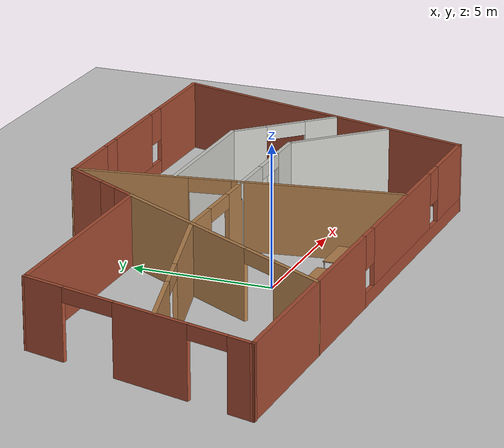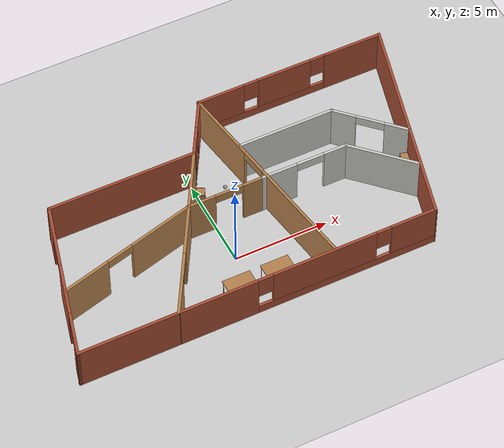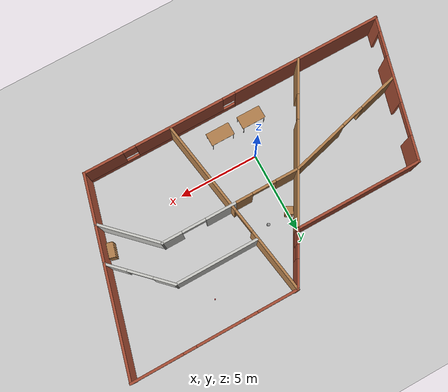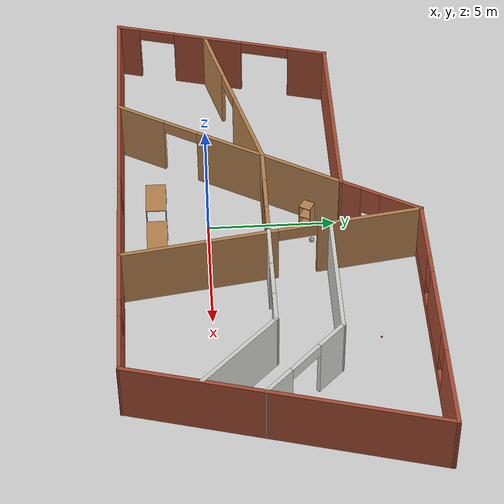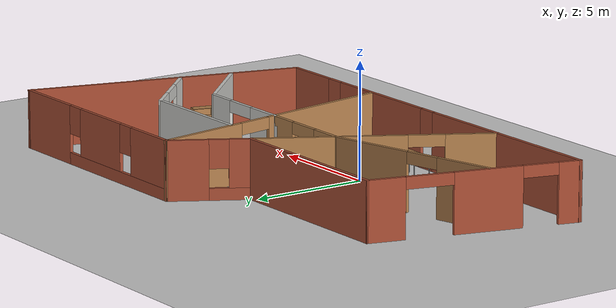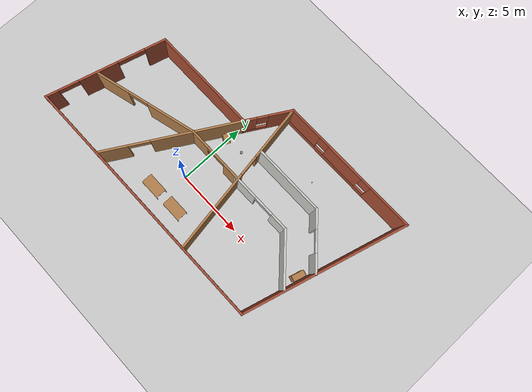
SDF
<sdf version="1.6">
 <world name="default">
  <light name="sun" type="directional">
   <pose>0 0 10 0 -0 0</pose>
   <diffuse>0.8 0.8 0.8 1</diffuse>
   <specular>0.2 0.2 0.2 1</specular>
   <attenuation>
    <range>1000</range>
    <constant>0.9</constant>
    <linear>0.01</linear>
    <quadratic>0.001</quadratic>
   </attenuation>
   <direction>-0.5 0.1 -0.9</direction>
  </light>
  <model name="ground_plane">
   <static>1</static>
   <link name="link">
    <collision name="collision">
     <geometry><plane><normal>0 0 1</normal><size>100 100</size></plane></geometry>
     <surface>
      <contact><collide_bitmask>65535</collide_bitmask></contact>
      <friction><ode><mu>100</mu><mu2>50</mu2></ode></friction>
     </surface>
    </collision>
    <visual name="visual">
     <cast_shadows>0</cast_shadows>
     <geometry><plane><normal>0 0 1</normal><size>100 100</size></plane></geometry>
     <material>
      <script><uri>file://media/materials/scripts/gazebo.material</uri><name>Gazebo/Grey</name></script>
     </material>
    </visual>
   </link>
  </model>
  <gravity>0 0 -9.8</gravity>
  <magnetic_field>6e-06 2.3e-05 -4.2e-05</magnetic_field>
  <atmosphere type="adiabatic"/>
  <physics name="default_physics" default="0" type="ode">
   <max_step_size>0.001</max_step_size>
   <real_time_factor>1</real_time_factor>
   <real_time_update_rate>1000</real_time_update_rate>
  </physics>
  <scene><ambient>0.4 0.4 0.4 1</ambient><background>0.7 0.7 0.7 1</background><shadows>1</shadows></scene>
  <spherical_coordinates>
   <surface_model>EARTH_WGS84</surface_model>
   <latitude_deg>0</latitude_deg>
   <longitude_deg>0</longitude_deg>
   <elevation>0</elevation>
   <heading_deg>0</heading_deg>
  </spherical_coordinates>
  <model name="AmanBuilding">
   <pose>1.20078 2.3534 0 0 -0 0</pose>
   <link name="Wall_0">
    <pose>-1.5335 -5.7284 0 0 -0 0</pose>
    <visual name="Wall_0_Visual_0">
     <pose>-4.88381 0 1.25 0 -0 0</pose>
     <geometry><box><size>9.48238 0.15 2.5</size></box></geometry>
     <material>
      <script><uri>file://media/materials/scripts/gazebo.material</uri><name>Gazebo/Bricks</name></script>
      <ambient>0.996078 0.47451 0.0196078 1</ambient>
     </material>
     <meta><layer>0</layer></meta>
    </visual>
    <collision name="Wall_0_Collision_0">
     <geometry><box><size>9.48238 0.15 2.5</size></box></geometry>
     <pose>-4.88381 0 1.25 0 -0 0</pose>
    </collision>
    <visual name="Wall_0_Visual_1">
     <pose>4.74119 0 0.25 0 -0 0</pose>
     <geometry><box><size>9.76762 0.15 0.5</size></box></geometry>
     <material>
      <script><uri>file://media/materials/scripts/gazebo.material</uri><name>Gazebo/Bricks</name></script>
      <ambient>0.996078 0.47451 0.0196078 1</ambient>
     </material>
     <meta><layer>0</layer></meta>
    </visual>
    <collision name="Wall_0_Collision_1">
     <geometry><box><size>9.76762 0.15 0.5</size></box></geometry>
     <pose>4.74119 0 0.25 0 -0 0</pose>
    </collision>
    <visual name="Wall_0_Visual_2">
     <pose>3.47253 0 1.5 0 -0 0</pose>
     <geometry><box><size>5.63031 0.15 2</size></box></geometry>
     <material>
      <script><uri>file://media/materials/scripts/gazebo.material</uri><name>Gazebo/Bricks</name></script>
      <ambient>0.996078 0.47451 0.0196078 1</ambient>
     </material>
     <meta><layer>0</layer></meta>
    </visual>
    <collision name="Wall_0_Collision_2">
     <geometry><box><size>5.63031 0.15 2</size></box></geometry>
     <pose>3.47253 0 1.5 0 -0 0</pose>
    </collision>
    <visual name="Wall_0_Visual_3">
     <pose>8.35634 0 1.5 0 -0 0</pose>
     <geometry><box><size>2.53731 0.15 2</size></box></geometry>
     <material>
      <script><uri>file://media/materials/scripts/gazebo.material</uri><name>Gazebo/Bricks</name></script>
      <ambient>0.996078 0.47451 0.0196078 1</ambient>
     </material>
     <meta><layer>0</layer></meta>
    </visual>
    <collision name="Wall_0_Collision_3">
     <geometry><box><size>2.53731 0.15 2</size></box></geometry>
     <pose>8.35634 0 1.5 0 -0 0</pose>
    </collision>
    <visual name="Wall_0_Visual_4">
     <pose>0.257378 0 1.9 0 -0 0</pose>
     <geometry><box><size>0.8 0.15 1.2</size></box></geometry>
     <material>
      <script><uri>file://media/materials/scripts/gazebo.material</uri><name>Gazebo/Bricks</name></script>
      <ambient>0.996078 0.47451 0.0196078 1</ambient>
     </material>
     <meta><layer>0</layer></meta>
    </visual>
    <collision name="Wall_0_Collision_4">
     <geometry><box><size>0.8 0.15 1.2</size></box></geometry>
     <pose>0.257378 0 1.9 0 -0 0</pose>
    </collision>
    <visual name="Wall_0_Visual_5">
     <pose>6.68769 0 1.9 0 -0 0</pose>
     <geometry><box><size>0.8 0.15 1.2</size></box></geometry>
     <material>
      <script><uri>file://media/materials/scripts/gazebo.material</uri><name>Gazebo/Bricks</name></script>
      <ambient>0.996078 0.47451 0.0196078 1</ambient>
     </material>
     <meta><layer>0</layer></meta>
    </visual>
    <collision name="Wall_0_Collision_5">
     <geometry><box><size>0.8 0.15 1.2</size></box></geometry>
     <pose>6.68769 0 1.9 0 -0 0</pose>
    </collision>
   </link>
   <link name="Wall_13">
    <pose>1.62541 0.017839 0 0 -0 1.72601</pose>
    <visual name="Wall_13_Visual_0">
     <pose>-2.8124 0 1.25 0 -0 0</pose>
     <geometry><box><size>6.06387 0.15 2.5</size></box></geometry>
     <material>
      <script><uri>file://media/materials/scripts/gazebo.material</uri><name>Gazebo/Wood</name></script>
      <ambient>0.435294 0.796078 0.67451 1</ambient>
     </material>
     <meta><layer>0</layer></meta>
    </visual>
    <collision name="Wall_13_Collision_0">
     <geometry><box><size>6.06387 0.15 2.5</size></box></geometry>
     <pose>-2.8124 0 1.25 0 -0 0</pose>
    </collision>
    <visual name="Wall_13_Visual_1">
     <pose>3.78193 0 1.25 0 -0 0</pose>
     <geometry><box><size>4.12481 0.15 2.5</size></box></geometry>
     <material>
      <script><uri>file://media/materials/scripts/gazebo.material</uri><name>Gazebo/Wood</name></script>
      <ambient>0.435294 0.796078 0.67451 1</ambient>
     </material>
     <meta><layer>0</layer></meta>
    </visual>
    <collision name="Wall_13_Collision_1">
     <geometry><box><size>4.12481 0.15 2.5</size></box></geometry>
     <pose>3.78193 0 1.25 0 -0 0</pose>
    </collision>
    <visual name="Wall_13_Visual_2">
     <pose>0.96953 0 2.25 0 -0 0</pose>
     <geometry><box><size>1.5 0.15 0.5</size></box></geometry>
     <material>
      <script><uri>file://media/materials/scripts/gazebo.material</uri><name>Gazebo/Wood</name></script>
      <ambient>0.435294 0.796078 0.67451 1</ambient>
     </material>
     <meta><layer>0</layer></meta>
    </visual>
    <collision name="Wall_13_Collision_2">
     <geometry><box><size>1.5 0.15 0.5</size></box></geometry>
     <pose>0.96953 0 2.25 0 -0 0</pose>
    </collision>
   </link>
   <link name="Wall_15">
    <collision name="Wall_15_Collision">
     <geometry><box><size>5.25 0.15 2.5</size></box></geometry>
     <pose>0 0 1.25 0 -0 0</pose>
    </collision>
    <visual name="Wall_15_Visual">
     <pose>0 0 1.25 0 -0 0</pose>
     <geometry><box><size>5.25 0.15 2.5</size></box></geometry>
     <material>
      <script><uri>file://media/materials/scripts/gazebo.material</uri><name>Gazebo/CeilingTiled</name></script>
      <ambient>1 0.764706 0.305882 1</ambient>
     </material>
     <meta><layer>0</layer></meta>
    </visual>
    <pose>3.91077 2.22853 0 0 -0 0</pose>
   </link>
   <link name="Wall_18">
    <pose>7.91034 0.778958 0 0 0 -0.785398</pose>
    <visual name="Wall_18_Visual_0">
     <pose>-1.43607 0 1.25 0 -0 0</pose>
     <geometry><box><size>1.37787 0.15 2.5</size></box></geometry>
     <material>
      <script><uri>file://media/materials/scripts/gazebo.material</uri><name>Gazebo/CeilingTiled</name></script>
      <ambient>1 0.764706 0.305882 1</ambient>
     </material>
     <meta><layer>0</layer></meta>
    </visual>
    <collision name="Wall_18_Collision_0">
     <geometry><box><size>1.37787 0.15 2.5</size></box></geometry>
     <pose>-1.43607 0 1.25 0 -0 0</pose>
    </collision>
    <visual name="Wall_18_Visual_1">
     <pose>1.43893 0 1.25 0 -0 0</pose>
     <geometry><box><size>1.37213 0.15 2.5</size></box></geometry>
     <material>
      <script><uri>file://media/materials/scripts/gazebo.material</uri><name>Gazebo/CeilingTiled</name></script>
      <ambient>1 0.764706 0.305882 1</ambient>
     </material>
     <meta><layer>0</layer></meta>
    </visual>
    <collision name="Wall_18_Collision_1">
     <geometry><box><size>1.37213 0.15 2.5</size></box></geometry>
     <pose>1.43893 0 1.25 0 -0 0</pose>
    </collision>
    <visual name="Wall_18_Visual_2">
     <pose>0.002866 0 2.25 0 -0 0</pose>
     <geometry><box><size>1.5 0.15 0.5</size></box></geometry>
     <material>
      <script><uri>file://media/materials/scripts/gazebo.material</uri><name>Gazebo/CeilingTiled</name></script>
      <ambient>1 0.764706 0.305882 1</ambient>
     </material>
     <meta><layer>0</layer></meta>
    </visual>
    <collision name="Wall_18_Collision_2">
     <geometry><box><size>1.5 0.15 0.5</size></box></geometry>
     <pose>0.002866 0 2.25 0 -0 0</pose>
    </collision>
   </link>
   <link name="Wall_20">
    <pose>-0.613955 -0.130795 0 0 -0 0</pose>
    <visual name="Wall_20_Visual_0">
     <pose>-1.35223 0 1.25 0 -0 0</pose>
     <geometry><box><size>1.54554 0.15 2.5</size></box></geometry>
     <material>
      <script><uri>file://media/materials/scripts/gazebo.material</uri><name>Gazebo/Wood</name></script>
      <ambient>0.435294 0.796078 0.67451 1</ambient>
     </material>
     <meta><layer>0</layer></meta>
    </visual>
    <collision name="Wall_20_Collision_0">
     <geometry><box><size>1.54554 0.15 2.5</size></box></geometry>
     <pose>-1.35223 0 1.25 0 -0 0</pose>
    </collision>
    <visual name="Wall_20_Visual_1">
     <pose>1.52277 0 1.25 0 -0 0</pose>
     <geometry><box><size>1.20446 0.15 2.5</size></box></geometry>
     <material>
      <script><uri>file://media/materials/scripts/gazebo.material</uri><name>Gazebo/Wood</name></script>
      <ambient>0.435294 0.796078 0.67451 1</ambient>
     </material>
     <meta><layer>0</layer></meta>
    </visual>
    <collision name="Wall_20_Collision_1">
     <geometry><box><size>1.20446 0.15 2.5</size></box></geometry>
     <pose>1.52277 0 1.25 0 -0 0</pose>
    </collision>
    <visual name="Wall_20_Visual_2">
     <pose>0.170538 0 2.25 0 -0 0</pose>
     <geometry><box><size>1.5 0.15 0.5</size></box></geometry>
     <material>
      <script><uri>file://media/materials/scripts/gazebo.material</uri><name>Gazebo/Wood</name></script>
      <ambient>0.435294 0.796078 0.67451 1</ambient>
     </material>
     <meta><layer>0</layer></meta>
    </visual>
    <collision name="Wall_20_Collision_2">
     <geometry><box><size>1.5 0.15 0.5</size></box></geometry>
     <pose>0.170538 0 2.25 0 -0 0</pose>
    </collision>
   </link>
   <link name="Wall_21">
    <pose>3.73604 -0.130795 0 0 -0 0</pose>
    <visual name="Wall_21_Visual_0">
     <pose>-1.40856 0 1.25 0 -0 0</pose>
     <geometry><box><size>1.93288 0.15 2.5</size></box></geometry>
     <material>
      <script><uri>file://media/materials/scripts/gazebo.material</uri><name>Gazebo/CeilingTiled</name></script>
      <ambient>1 0.764706 0.305882 1</ambient>
     </material>
     <meta><layer>0</layer></meta>
    </visual>
    <collision name="Wall_21_Collision_0">
     <geometry><box><size>1.93288 0.15 2.5</size></box></geometry>
     <pose>-1.40856 0 1.25 0 -0 0</pose>
    </collision>
    <visual name="Wall_21_Visual_1">
     <pose>1.71644 0 1.25 0 -0 0</pose>
     <geometry><box><size>1.31712 0.15 2.5</size></box></geometry>
     <material>
      <script><uri>file://media/materials/scripts/gazebo.material</uri><name>Gazebo/CeilingTiled</name></script>
      <ambient>1 0.764706 0.305882 1</ambient>
     </material>
     <meta><layer>0</layer></meta>
    </visual>
    <collision name="Wall_21_Collision_1">
     <geometry><box><size>1.31712 0.15 2.5</size></box></geometry>
     <pose>1.71644 0 1.25 0 -0 0</pose>
    </collision>
    <visual name="Wall_21_Visual_2">
     <pose>0.307876 0 2.25 0 -0 0</pose>
     <geometry><box><size>1.5 0.15 0.5</size></box></geometry>
     <material>
      <script><uri>file://media/materials/scripts/gazebo.material</uri><name>Gazebo/CeilingTiled</name></script>
      <ambient>1 0.764706 0.305882 1</ambient>
     </material>
     <meta><layer>0</layer></meta>
    </visual>
    <collision name="Wall_21_Collision_2">
     <geometry><box><size>1.5 0.15 0.5</size></box></geometry>
     <pose>0.307876 0 2.25 0 -0 0</pose>
    </collision>
   </link>
   <link name="Wall_22">
    <collision name="Wall_22_Collision">
     <geometry><box><size>4 0.15 2.5</size></box></geometry>
     <pose>0 0 1.25 0 -0 0</pose>
    </collision>
    <visual name="Wall_22_Visual">
     <pose>0 0 1.25 0 -0 0</pose>
     <geometry><box><size>4 0.15 2.5</size></box></geometry>
     <material>
      <script><uri>file://media/materials/scripts/gazebo.material</uri><name>Gazebo/CeilingTiled</name></script>
      <ambient>1 0.764706 0.305882 1</ambient>
     </material>
     <meta><layer>0</layer></meta>
    </visual>
    <pose>7.39723 -1.49198 0 0 0 -0.785398</pose>
   </link>
   <link name="Wall_24">
    <pose>-6.33447 -1.11431 0 0 0 -2.87979</pose>
    <visual name="Wall_24_Visual_0">
     <pose>-2.03566 0 1.25 0 -0 0</pose>
     <geometry><box><size>3.67869 0.15 2.5</size></box></geometry>
     <material>
      <script><uri>file://media/materials/scripts/gazebo.material</uri><name>Gazebo/Wood</name></script>
      <ambient>1 0.764706 0.305882 1</ambient>
     </material>
     <meta><layer>0</layer></meta>
    </visual>
    <collision name="Wall_24_Collision_0">
     <geometry><box><size>3.67869 0.15 2.5</size></box></geometry>
     <pose>-2.03566 0 1.25 0 -0 0</pose>
    </collision>
    <visual name="Wall_24_Visual_1">
     <pose>2.58934 0 1.25 0 -0 0</pose>
     <geometry><box><size>2.57131 0.15 2.5</size></box></geometry>
     <material>
      <script><uri>file://media/materials/scripts/gazebo.material</uri><name>Gazebo/Wood</name></script>
      <ambient>1 0.764706 0.305882 1</ambient>
     </material>
     <meta><layer>0</layer></meta>
    </visual>
    <collision name="Wall_24_Collision_1">
     <geometry><box><size>2.57131 0.15 2.5</size></box></geometry>
     <pose>2.58934 0 1.25 0 -0 0</pose>
    </collision>
    <visual name="Wall_24_Visual_2">
     <pose>0.553685 0 2.25 0 -0 0</pose>
     <geometry><box><size>1.5 0.15 0.5</size></box></geometry>
     <material>
      <script><uri>file://media/materials/scripts/gazebo.material</uri><name>Gazebo/Wood</name></script>
      <ambient>1 0.764706 0.305882 1</ambient>
     </material>
     <meta><layer>0</layer></meta>
    </visual>
    <collision name="Wall_24_Collision_2">
     <geometry><box><size>1.5 0.15 0.5</size></box></geometry>
     <pose>0.553685 0 2.25 0 -0 0</pose>
    </collision>
   </link>
   <link name="Wall_3">
    <collision name="Wall_3_Collision">
     <geometry><box><size>12 0.15 2.5</size></box></geometry>
     <pose>0 0 1.25 0 -0 0</pose>
    </collision>
    <visual name="Wall_3_Visual">
     <pose>0 0 1.25 0 -0 0</pose>
     <geometry><box><size>12 0.15 2.5</size></box></geometry>
     <material>
      <script><uri>file://media/materials/scripts/gazebo.material</uri><name>Gazebo/Bricks</name></script>
      <ambient>0.996078 0.47451 0.0196078 1</ambient>
     </material>
     <meta><layer>0</layer></meta>
    </visual>
    <pose>9.55001 -0.005291 0 0 -0 1.309</pose>
   </link>
   <link name="Wall_4">
    <pose>5.90851 5.71782 0 0 -0 3.14159</pose>
    <visual name="Wall_4_Visual_0">
     <pose>-3.60437 0 1.25 0 -0 0</pose>
     <geometry><box><size>3.29126 0.15 2.5</size></box></geometry>
     <material>
      <script><uri>file://media/materials/scripts/gazebo.material</uri><name>Gazebo/Bricks</name></script>
      <ambient>0.996078 0.47451 0.0196078 1</ambient>
     </material>
     <meta><layer>0</layer></meta>
    </visual>
    <collision name="Wall_4_Collision_0">
     <geometry><box><size>3.29126 0.15 2.5</size></box></geometry>
     <pose>-3.60437 0 1.25 0 -0 0</pose>
    </collision>
    <visual name="Wall_4_Visual_1">
     <pose>1.64563 0 0.25 0 -0 0</pose>
     <geometry><box><size>7.20874 0.15 0.5</size></box></geometry>
     <material>
      <script><uri>file://media/materials/scripts/gazebo.material</uri><name>Gazebo/Bricks</name></script>
      <ambient>0.996078 0.47451 0.0196078 1</ambient>
     </material>
     <meta><layer>0</layer></meta>
    </visual>
    <collision name="Wall_4_Collision_1">
     <geometry><box><size>7.20874 0.15 0.5</size></box></geometry>
     <pose>1.64563 0 0.25 0 -0 0</pose>
    </collision>
    <visual name="Wall_4_Visual_2">
     <pose>0.337968 0 1.5 0 -0 0</pose>
     <geometry><box><size>2.99342 0.15 2</size></box></geometry>
     <material>
      <script><uri>file://media/materials/scripts/gazebo.material</uri><name>Gazebo/Bricks</name></script>
      <ambient>0.996078 0.47451 0.0196078 1</ambient>
     </material>
     <meta><layer>0</layer></meta>
    </visual>
    <collision name="Wall_4_Collision_2">
     <geometry><box><size>2.99342 0.15 2</size></box></geometry>
     <pose>0.337968 0 1.5 0 -0 0</pose>
    </collision>
    <visual name="Wall_4_Visual_3">
     <pose>3.94234 0 1.5 0 -0 0</pose>
     <geometry><box><size>2.61532 0.15 2</size></box></geometry>
     <material>
      <script><uri>file://media/materials/scripts/gazebo.material</uri><name>Gazebo/Bricks</name></script>
      <ambient>0.996078 0.47451 0.0196078 1</ambient>
     </material>
     <meta><layer>0</layer></meta>
    </visual>
    <collision name="Wall_4_Collision_3">
     <geometry><box><size>2.61532 0.15 2</size></box></geometry>
     <pose>3.94234 0 1.5 0 -0 0</pose>
    </collision>
    <visual name="Wall_4_Visual_4">
     <pose>-1.55874 0 1.9 0 -0 0</pose>
     <geometry><box><size>0.8 0.15 1.2</size></box></geometry>
     <material>
      <script><uri>file://media/materials/scripts/gazebo.material</uri><name>Gazebo/Bricks</name></script>
      <ambient>0.996078 0.47451 0.0196078 1</ambient>
     </material>
     <meta><layer>0</layer></meta>
    </visual>
    <collision name="Wall_4_Collision_4">
     <geometry><box><size>0.8 0.15 1.2</size></box></geometry>
     <pose>-1.55874 0 1.9 0 -0 0</pose>
    </collision>
    <visual name="Wall_4_Visual_5">
     <pose>2.23468 0 1.9 0 -0 0</pose>
     <geometry><box><size>0.8 0.15 1.2</size></box></geometry>
     <material>
      <script><uri>file://media/materials/scripts/gazebo.material</uri><name>Gazebo/Bricks</name></script>
      <ambient>0.996078 0.47451 0.0196078 1</ambient>
     </material>
     <meta><layer>0</layer></meta>
    </visual>
    <collision name="Wall_4_Collision_5">
     <geometry><box><size>0.8 0.15 1.2</size></box></geometry>
     <pose>2.23468 0 1.9 0 -0 0</pose>
    </collision>
   </link>
   <link name="Wall_5">
    <pose>-0.10399 4.26723 0 0 0 -2.0944</pose>
    <visual name="Wall_5_Visual_0">
     <pose>-0.874763 0 1.25 0 -0 0</pose>
     <geometry><box><size>1.75047 0.15 2.5</size></box></geometry>
     <material>
      <script><uri>file://media/materials/scripts/gazebo.material</uri><name>Gazebo/Bricks</name></script>
      <ambient>0.996078 0.47451 0.0196078 1</ambient>
     </material>
     <meta><layer>0</layer></meta>
    </visual>
    <collision name="Wall_5_Collision_0">
     <geometry><box><size>1.75047 0.15 2.5</size></box></geometry>
     <pose>-0.874763 0 1.25 0 -0 0</pose>
    </collision>
    <visual name="Wall_5_Visual_1">
     <pose>0.875237 0 0.25 0 -0 0</pose>
     <geometry><box><size>1.74953 0.15 0.5</size></box></geometry>
     <material>
      <script><uri>file://media/materials/scripts/gazebo.material</uri><name>Gazebo/Bricks</name></script>
      <ambient>0.996078 0.47451 0.0196078 1</ambient>
     </material>
     <meta><layer>0</layer></meta>
    </visual>
    <collision name="Wall_5_Collision_1">
     <geometry><box><size>1.74953 0.15 0.5</size></box></geometry>
     <pose>0.875237 0 0.25 0 -0 0</pose>
    </collision>
    <visual name="Wall_5_Visual_2">
     <pose>1.27524 0 1.5 0 -0 0</pose>
     <geometry><box><size>0.949526 0.15 2</size></box></geometry>
     <material>
      <script><uri>file://media/materials/scripts/gazebo.material</uri><name>Gazebo/Bricks</name></script>
      <ambient>0.996078 0.47451 0.0196078 1</ambient>
     </material>
     <meta><layer>0</layer></meta>
    </visual>
    <collision name="Wall_5_Collision_2">
     <geometry><box><size>0.949526 0.15 2</size></box></geometry>
     <pose>1.27524 0 1.5 0 -0 0</pose>
    </collision>
    <visual name="Wall_5_Visual_3">
     <pose>0.400474 0 1.9 0 -0 0</pose>
     <geometry><box><size>0.8 0.15 1.2</size></box></geometry>
     <material>
      <script><uri>file://media/materials/scripts/gazebo.material</uri><name>Gazebo/Bricks</name></script>
      <ambient>0.996078 0.47451 0.0196078 1</ambient>
     </material>
     <meta><layer>0</layer></meta>
    </visual>
    <collision name="Wall_5_Collision_3">
     <geometry><box><size>0.8 0.15 1.2</size></box></geometry>
     <pose>0.400474 0 1.9 0 -0 0</pose>
    </collision>
   </link>
   <link name="Wall_6">
    <collision name="Wall_6_Collision">
     <geometry><box><size>8 0.15 2.5</size></box></geometry>
     <pose>0 0 1.25 0 -0 0</pose>
    </collision>
    <visual name="Wall_6_Visual">
     <pose>0 0 1.25 0 -0 0</pose>
     <geometry><box><size>8 0.15 2.5</size></box></geometry>
     <material>
      <script><uri>file://media/materials/scripts/gazebo.material</uri><name>Gazebo/Bricks</name></script>
      <ambient>0.996078 0.47451 0.0196078 1</ambient>
     </material>
     <meta><layer>0</layer></meta>
    </visual>
    <pose>-4.86649 2.81663 0 0 -0 3.14159</pose>
   </link>
   <link name="Wall_7">
    <pose>-9.93749 -1.45588 0 0 0 -1.83285</pose>
    <visual name="Wall_7_Visual_0">
     <pose>-3.68751 0 1.25 0 -0 0</pose>
     <geometry><box><size>1.62207 0.15 2.5</size></box></geometry>
     <material>
      <script><uri>file://media/materials/scripts/gazebo.material</uri><name>Gazebo/Bricks</name></script>
      <ambient>0.996078 0.47451 0.0196078 1</ambient>
     </material>
     <meta><layer>0</layer></meta>
    </visual>
    <collision name="Wall_7_Collision_0">
     <geometry><box><size>1.62207 0.15 2.5</size></box></geometry>
     <pose>-3.68751 0 1.25 0 -0 0</pose>
    </collision>
    <visual name="Wall_7_Visual_1">
     <pose>0.568665 0 1.25 0 -0 0</pose>
     <geometry><box><size>2.89027 0.15 2.5</size></box></geometry>
     <material>
      <script><uri>file://media/materials/scripts/gazebo.material</uri><name>Gazebo/Bricks</name></script>
      <ambient>0.996078 0.47451 0.0196078 1</ambient>
     </material>
     <meta><layer>0</layer></meta>
    </visual>
    <collision name="Wall_7_Collision_1">
     <geometry><box><size>2.89027 0.15 2.5</size></box></geometry>
     <pose>0.568665 0 1.25 0 -0 0</pose>
    </collision>
    <visual name="Wall_7_Visual_2">
     <pose>4.00617 0 1.25 0 -0 0</pose>
     <geometry><box><size>0.984742 0.15 2.5</size></box></geometry>
     <material>
      <script><uri>file://media/materials/scripts/gazebo.material</uri><name>Gazebo/Bricks</name></script>
      <ambient>0.996078 0.47451 0.0196078 1</ambient>
     </material>
     <meta><layer>0</layer></meta>
    </visual>
    <collision name="Wall_7_Collision_2">
     <geometry><box><size>0.984742 0.15 2.5</size></box></geometry>
     <pose>4.00617 0 1.25 0 -0 0</pose>
    </collision>
    <visual name="Wall_7_Visual_3">
     <pose>-1.87647 0 2.25 0 -0 0</pose>
     <geometry><box><size>2 0.15 0.5</size></box></geometry>
     <material>
      <script><uri>file://media/materials/scripts/gazebo.material</uri><name>Gazebo/Bricks</name></script>
      <ambient>0.996078 0.47451 0.0196078 1</ambient>
     </material>
     <meta><layer>0</layer></meta>
    </visual>
    <collision name="Wall_7_Collision_3">
     <geometry><box><size>2 0.15 0.5</size></box></geometry>
     <pose>-1.87647 0 2.25 0 -0 0</pose>
    </collision>
    <visual name="Wall_7_Visual_4">
     <pose>2.7638 0 2.25 0 -0 0</pose>
     <geometry><box><size>1.5 0.15 0.5</size></box></geometry>
     <material>
      <script><uri>file://media/materials/scripts/gazebo.material</uri><name>Gazebo/Bricks</name></script>
      <ambient>0.996078 0.47451 0.0196078 1</ambient>
     </material>
     <meta><layer>0</layer></meta>
    </visual>
    <collision name="Wall_7_Collision_4">
     <geometry><box><size>1.5 0.15 0.5</size></box></geometry>
     <pose>2.7638 0 2.25 0 -0 0</pose>
    </collision>
   </link>
   <link name="Wall_9">
    <pose>-3.40399 -1.44854 0 0 0 -2.0944</pose>
    <visual name="Wall_9_Visual_0">
     <pose>-1.82587 0 1.25 0 -0 0</pose>
     <geometry><box><size>6.34825 0.15 2.5</size></box></geometry>
     <material>
      <script><uri>file://media/materials/scripts/gazebo.material</uri><name>Gazebo/Wood</name></script>
      <ambient>0.435294 0.796078 0.67451 1</ambient>
     </material>
     <meta><layer>0</layer></meta>
    </visual>
    <collision name="Wall_9_Collision_0">
     <geometry><box><size>6.34825 0.15 2.5</size></box></geometry>
     <pose>-1.82587 0 1.25 0 -0 0</pose>
    </collision>
    <visual name="Wall_9_Visual_1">
     <pose>3.92413 0 1.25 0 -0 0</pose>
     <geometry><box><size>2.15175 0.15 2.5</size></box></geometry>
     <material>
      <script><uri>file://media/materials/scripts/gazebo.material</uri><name>Gazebo/Wood</name></script>
      <ambient>0.435294 0.796078 0.67451 1</ambient>
     </material>
     <meta><layer>0</layer></meta>
    </visual>
    <collision name="Wall_9_Collision_1">
     <geometry><box><size>2.15175 0.15 2.5</size></box></geometry>
     <pose>3.92413 0 1.25 0 -0 0</pose>
    </collision>
    <visual name="Wall_9_Visual_2">
     <pose>2.09825 0 2.25 0 -0 0</pose>
     <geometry><box><size>1.5 0.15 0.5</size></box></geometry>
     <material>
      <script><uri>file://media/materials/scripts/gazebo.material</uri><name>Gazebo/Wood</name></script>
      <ambient>0.435294 0.796078 0.67451 1</ambient>
     </material>
     <meta><layer>0</layer></meta>
    </visual>
    <collision name="Wall_9_Collision_2">
     <geometry><box><size>1.5 0.15 0.5</size></box></geometry>
     <pose>2.09825 0 2.25 0 -0 0</pose>
    </collision>
   </link>
   <static>1</static>
  </model>
  <model name="unit_sphere">
   <link name="link">
    <inertial>
     <mass>1</mass>
     <inertia><ixx>0.1</ixx><ixy>0</ixy><ixz>0</ixz><iyy>0.1</iyy><iyz>0</iyz><izz>0.1</izz></inertia>
    </inertial>
    <visual name="visual">
     <geometry><sphere><radius>0.1</radius></sphere></geometry>
     <material>
      <script><name>Gazebo/Grey</name><uri>file://media/materials/scripts/gazebo.material</uri></script>
      <shader type="pixel"><normal_map>__default__</normal_map></shader>
      <ambient>1 1 1 1</ambient>
      <diffuse>1 1 1 1</diffuse>
      <specular>1 1 1 1</specular>
      <emissive>1 1 1 1</emissive>
     </material>
    </visual>
    <collision name="collision">
     <geometry><sphere><radius>0.1</radius></sphere></geometry>
     <surface>
      <friction>
       <ode><mu>1</mu><mu2>1</mu2><fdir1>0 0 0</fdir1><slip1>0</slip1><slip2>0</slip2></ode>
       <torsional>
        <coefficient>1</coefficient>
        <patch_radius>0</patch_radius>
        <surface_radius>0</surface_radius>
        <use_patch_radius>1</use_patch_radius>
        <ode><slip>0</slip></ode>
       </torsional>
      </friction>
      <bounce><restitution_coefficient>0</restitution_coefficient><threshold>1e+06</threshold></bounce>
      <contact>
       <collide_without_contact>0</collide_without_contact>
       <collide_without_contact_bitmask>1</collide_without_contact_bitmask>
       <collide_bitmask>1</collide_bitmask>
       <ode>
        <soft_cfm>0</soft_cfm>
        <soft_erp>0.2</soft_erp>
        <kp>1e+13</kp>
        <kd>1</kd>
        <max_vel>0.01</max_vel>
        <min_depth>0</min_depth>
       </ode>
       <bullet>
        <split_impulse>1</split_impulse>
        <split_impulse_penetration_threshold>-0.01</split_impulse_penetration_threshold>
        <soft_cfm>0</soft_cfm>
        <soft_erp>0.2</soft_erp>
        <kp>1e+13</kp>
        <kd>1</kd>
       </bullet>
      </contact>
     </surface>
    </collision>
   </link>
   <static>0</static>
   <pose>1.38476 3.98783 0.5 0 -0 0</pose>
  </model>
  <model name="cabinet">
   <static>1</static>
   <link name="cabinet_bottom_plate">
    <inertial>
     <pose>0 0 -1 0 -0 0</pose>
     <inertia><ixx>2.05</ixx><ixy>0</ixy><ixz>0</ixz><iyy>2.05</iyy><iyz>0</iyz><izz>2.05</izz></inertia>
     <mass>25</mass>
    </inertial>
    <collision name="cabinet_bottom_plate_geom">
     <pose>0 0 0.01 0 -0 0</pose>
     <geometry><box><size>0.45 0.45 0.02</size></box></geometry>
    </collision>
    <visual name="cabinet_bottom_plate_geom_visual">
     <pose>0 0 0.01 0 -0 0</pose>
     <geometry><box><size>0.45 0.45 0.02</size></box></geometry>
     <material>
      <script><uri>file://media/materials/scripts/gazebo.material</uri><name>Gazebo/Wood</name></script>
     </material>
    </visual>
    <collision name="cabinet_bottom_plate_geom_cabinet_back_plate">
     <pose>0.235 0 0.51 0 -0 0</pose>
     <geometry><box><size>0.02 0.45 1.02</size></box></geometry>
    </collision>
    <visual name="cabinet_bottom_plate_geom_cabinet_back_plate_visual">
     <pose>0.235 0 0.51 0 -0 0</pose>
     <geometry><box><size>0.02 0.45 1.02</size></box></geometry>
     <material>
      <script><uri>file://media/materials/scripts/gazebo.material</uri><name>Gazebo/Wood</name></script>
     </material>
    </visual>
    <collision name="cabinet_bottom_plate_geom_cabinet_left_plate">
     <pose>0 0.235 0.51 0 -0 0</pose>
     <geometry><box><size>0.45 0.02 1.02</size></box></geometry>
    </collision>
    <visual name="cabinet_bottom_plate_geom_cabinet_left_plate_visual">
     <pose>0 0.235 0.51 0 -0 0</pose>
     <geometry><box><size>0.45 0.02 1.02</size></box></geometry>
     <material>
      <script><uri>file://media/materials/scripts/gazebo.material</uri><name>Gazebo/Wood</name></script>
     </material>
    </visual>
    <collision name="cabinet_bottom_plate_geom_cabinet_middle_plate">
     <pose>0 0 0.51 0 -0 0</pose>
     <geometry><box><size>0.45 0.45 0.02</size></box></geometry>
    </collision>
    <visual name="cabinet_bottom_plate_geom_cabinet_middle_plate_visual">
     <pose>0 0 0.51 0 -0 0</pose>
     <geometry><box><size>0.45 0.45 0.02</size></box></geometry>
     <material>
      <script><uri>file://media/materials/scripts/gazebo.material</uri><name>Gazebo/Wood</name></script>
     </material>
    </visual>
    <collision name="cabinet_bottom_plate_geom_cabinet_right_plate">
     <pose>0 -0.235 0.51 0 -0 0</pose>
     <geometry><box><size>0.45 0.02 1.02</size></box></geometry>
    </collision>
    <visual name="cabinet_bottom_plate_geom_cabinet_right_plate_visual">
     <pose>0 -0.235 0.51 0 -0 0</pose>
     <geometry><box><size>0.45 0.02 1.02</size></box></geometry>
     <material>
      <script><uri>file://media/materials/scripts/gazebo.material</uri><name>Gazebo/Wood</name></script>
     </material>
    </visual>
    <collision name="cabinet_bottom_plate_geom_cabinet_top_plate">
     <pose>0 0 1.01 0 -0 0</pose>
     <geometry><box><size>0.45 0.45 0.02</size></box></geometry>
    </collision>
    <visual name="cabinet_bottom_plate_geom_cabinet_top_plate_visual">
     <pose>0 0 1.01 0 -0 0</pose>
     <geometry><box><size>0.45 0.45 0.02</size></box></geometry>
     <material>
      <script><uri>file://media/materials/scripts/gazebo.material</uri><name>Gazebo/Wood</name></script>
     </material>
    </visual>
   </link>
   <pose>-0.033443 3.8962 0 0 -0 2.63495</pose>
  </model>
  <model name="bookshelf">
   <static>1</static>
   <link name="link">
    <inertial><mass>1</mass></inertial>
    <collision name="back">
     <pose>0 0.005 0.6 0 -0 0</pose>
     <geometry><box><size>0.9 0.01 1.2</size></box></geometry>
    </collision>
    <visual name="visual1">
     <pose>0 0.005 0.6 0 -0 0</pose>
     <geometry><box><size>0.9 0.01 1.2</size></box></geometry>
     <material>
      <script><uri>file://media/materials/scripts/gazebo.material</uri><name>Gazebo/Wood</name></script>
     </material>
    </visual>
    <collision name="left_side">
     <pose>0.45 -0.195 0.6 0 -0 0</pose>
     <geometry><box><size>0.02 0.4 1.2</size></box></geometry>
    </collision>
    <visual name="visual2">
     <pose>0.45 -0.195 0.6 0 -0 0</pose>
     <geometry><box><size>0.02 0.4 1.2</size></box></geometry>
     <material>
      <script><uri>file://media/materials/scripts/gazebo.material</uri><name>Gazebo/Wood</name></script>
     </material>
    </visual>
    <collision name="right_side">
     <pose>-0.45 -0.195 0.6 0 -0 0</pose>
     <geometry><box><size>0.02 0.4 1.2</size></box></geometry>
    </collision>
    <visual name="visual3">
     <pose>-0.45 -0.195 0.6 0 -0 0</pose>
     <geometry><box><size>0.02 0.4 1.2</size></box></geometry>
     <material>
      <script><uri>file://media/materials/scripts/gazebo.material</uri><name>Gazebo/Wood</name></script>
     </material>
    </visual>
    <collision name="bottom">
     <pose>0 -0.195 0.03 0 -0 0</pose>
     <geometry><box><size>0.88 0.4 0.06</size></box></geometry>
    </collision>
    <visual name="visual4">
     <pose>0 -0.195 0.03 0 -0 0</pose>
     <geometry><box><size>0.88 0.4 0.06</size></box></geometry>
     <material>
      <script><uri>file://media/materials/scripts/gazebo.material</uri><name>Gazebo/Wood</name></script>
     </material>
    </visual>
    <collision name="top">
     <pose>0 -0.195 1.19 0 -0 0</pose>
     <geometry><box><size>0.88 0.4 0.02</size></box></geometry>
    </collision>
    <visual name="visual5">
     <pose>0 -0.195 1.19 0 -0 0</pose>
     <geometry><box><size>0.88 0.4 0.02</size></box></geometry>
     <material>
      <script><uri>file://media/materials/scripts/gazebo.material</uri><name>Gazebo/Wood</name></script>
     </material>
    </visual>
    <collision name="low_shelf">
     <pose>0 -0.195 0.43 0 -0 0</pose>
     <geometry><box><size>0.88 0.4 0.02</size></box></geometry>
    </collision>
    <visual name="visual6">
     <pose>0 -0.195 0.43 0 -0 0</pose>
     <geometry><box><size>0.88 0.4 0.02</size></box></geometry>
     <material>
      <script><uri>file://media/materials/scripts/gazebo.material</uri><name>Gazebo/Wood</name></script>
     </material>
    </visual>
    <collision name="high_shelf">
     <pose>0 -0.195 0.8 0 -0 0</pose>
     <geometry><box><size>0.88 0.4 0.02</size></box></geometry>
    </collision>
    <visual name="visual7">
     <pose>0 -0.195 0.8 0 -0 0</pose>
     <geometry><box><size>0.88 0.4 0.02</size></box></geometry>
     <material>
      <script><uri>file://media/materials/scripts/gazebo.material</uri><name>Gazebo/Wood</name></script>
     </material>
    </visual>
   </link>
   <pose>10.193 0.913508 0 0 0 -1.84599</pose>
  </model>
  <model name="cricket_ball">
   <link name="link">
    <pose>0 0 0.0375 0 -0 0</pose>
    <inertial>
     <mass>0.1467</mass>
     <inertia>
      <ixx>8.25187e-05</ixx>
      <ixy>0</ixy>
      <ixz>0</ixz>
      <iyy>8.25187e-05</iyy>
      <iyz>0</iyz>
      <izz>8.25187e-05</izz>
     </inertia>
    </inertial>
    <collision name="collision">
     <geometry><sphere><radius>0.0375</radius></sphere></geometry>
     <surface>
      <contact>
       <poissons_ratio>0.347</poissons_ratio>
       <elastic_modulus>8.8e+09</elastic_modulus>
       <ode><kp>100000</kp><kd>100</kd><max_vel>100</max_vel><min_depth>0.001</min_depth></ode>
      </contact>
      <friction>
       <torsional>
        <coefficient>1</coefficient>
        <use_patch_radius>0</use_patch_radius>
        <surface_radius>0.01</surface_radius>
       </torsional>
      </friction>
     </surface>
    </collision>
    <visual name="visual">
     <geometry><sphere><radius>0.0375</radius></sphere></geometry>
     <material>
      <script><uri>file://media/materials/scripts/gazebo.material</uri><name>Gazebo/Red</name></script>
     </material>
    </visual>
    <velocity_decay><linear>0</linear><angular>0.005</angular></velocity_decay>
   </link>
   <pose>6.1647 6.22779 0 0 -0 0</pose>
  </model>
  <model name="table">
   <static>1</static>
   <link name="link">
    <collision name="surface">
     <pose>0 0 1 0 -0 0</pose>
     <geometry><box><size>1.5 0.8 0.03</size></box></geometry>
     <surface><friction><ode><mu>0.6</mu><mu2>0.6</mu2></ode></friction></surface>
    </collision>
    <visual name="visual1">
     <pose>0 0 1 0 -0 0</pose>
     <geometry><box><size>1.5 0.8 0.03</size></box></geometry>
     <material>
      <script><uri>file://media/materials/scripts/gazebo.material</uri><name>Gazebo/Wood</name></script>
     </material>
    </visual>
    <collision name="front_left_leg">
     <pose>0.68 0.38 0.5 0 -0 0</pose>
     <geometry><cylinder><radius>0.02</radius><length>1</length></cylinder></geometry>
    </collision>
    <visual name="front_left_leg">
     <pose>0.68 0.38 0.5 0 -0 0</pose>
     <geometry><cylinder><radius>0.02</radius><length>1</length></cylinder></geometry>
     <material>
      <script><uri>file://media/materials/scripts/gazebo.material</uri><name>Gazebo/Grey</name></script>
     </material>
    </visual>
    <collision name="front_right_leg">
     <pose>0.68 -0.38 0.5 0 -0 0</pose>
     <geometry><cylinder><radius>0.02</radius><length>1</length></cylinder></geometry>
    </collision>
    <visual name="front_right_leg">
     <pose>0.68 -0.38 0.5 0 -0 0</pose>
     <geometry><cylinder><radius>0.02</radius><length>1</length></cylinder></geometry>
     <material>
      <script><uri>file://media/materials/scripts/gazebo.material</uri><name>Gazebo/Grey</name></script>
     </material>
    </visual>
    <collision name="back_right_leg">
     <pose>-0.68 -0.38 0.5 0 -0 0</pose>
     <geometry><cylinder><radius>0.02</radius><length>1</length></cylinder></geometry>
    </collision>
    <visual name="back_right_leg">
     <pose>-0.68 -0.38 0.5 0 -0 0</pose>
     <geometry><cylinder><radius>0.02</radius><length>1</length></cylinder></geometry>
     <material>
      <script><uri>file://media/materials/scripts/gazebo.material</uri><name>Gazebo/Grey</name></script>
     </material>
    </visual>
    <collision name="back_left_leg">
     <pose>-0.68 0.38 0.5 0 -0 0</pose>
     <geometry><cylinder><radius>0.02</radius><length>1</length></cylinder></geometry>
    </collision>
    <visual name="back_left_leg">
     <pose>-0.68 0.38 0.5 0 -0 0</pose>
     <geometry><cylinder><radius>0.02</radius><length>1</length></cylinder></geometry>
     <material>
      <script><uri>file://media/materials/scripts/gazebo.material</uri><name>Gazebo/Grey</name></script>
     </material>
    </visual>
   </link>
   <pose>-0.809584 -2.01476 0 0 -0 0</pose>
  </model>
  <model name="table_clone">
   <static>1</static>
   <link name="link">
    <collision name="surface">
     <pose>0 0 1 0 -0 0</pose>
     <geometry><box><size>1.5 0.8 0.03</size></box></geometry>
     <surface><friction><ode><mu>0.6</mu><mu2>0.6</mu2></ode></friction></surface>
    </collision>
    <visual name="visual1">
     <pose>0 0 1 0 -0 0</pose>
     <geometry><box><size>1.5 0.8 0.03</size></box></geometry>
     <material>
      <script><uri>file://media/materials/scripts/gazebo.material</uri><name>Gazebo/Wood</name></script>
     </material>
    </visual>
    <collision name="front_left_leg">
     <pose>0.68 0.38 0.5 0 -0 0</pose>
     <geometry><cylinder><radius>0.02</radius><length>1</length></cylinder></geometry>
    </collision>
    <visual name="front_left_leg">
     <pose>0.68 0.38 0.5 0 -0 0</pose>
     <geometry><cylinder><radius>0.02</radius><length>1</length></cylinder></geometry>
     <material>
      <script><uri>file://media/materials/scripts/gazebo.material</uri><name>Gazebo/Grey</name></script>
     </material>
    </visual>
    <collision name="front_right_leg">
     <pose>0.68 -0.38 0.5 0 -0 0</pose>
     <geometry><cylinder><radius>0.02</radius><length>1</length></cylinder></geometry>
    </collision>
    <visual name="front_right_leg">
     <pose>0.68 -0.38 0.5 0 -0 0</pose>
     <geometry><cylinder><radius>0.02</radius><length>1</length></cylinder></geometry>
     <material>
      <script><uri>file://media/materials/scripts/gazebo.material</uri><name>Gazebo/Grey</name></script>
     </material>
    </visual>
    <collision name="back_right_leg">
     <pose>-0.68 -0.38 0.5 0 -0 0</pose>
     <geometry><cylinder><radius>0.02</radius><length>1</length></cylinder></geometry>
    </collision>
    <visual name="back_right_leg">
     <pose>-0.68 -0.38 0.5 0 -0 0</pose>
     <geometry><cylinder><radius>0.02</radius><length>1</length></cylinder></geometry>
     <material>
      <script><uri>file://media/materials/scripts/gazebo.material</uri><name>Gazebo/Grey</name></script>
     </material>
    </visual>
    <collision name="back_left_leg">
     <pose>-0.68 0.38 0.5 0 -0 0</pose>
     <geometry><cylinder><radius>0.02</radius><length>1</length></cylinder></geometry>
    </collision>
    <visual name="back_left_leg">
     <pose>-0.68 0.38 0.5 0 -0 0</pose>
     <geometry><cylinder><radius>0.02</radius><length>1</length></cylinder></geometry>
     <material>
      <script><uri>file://media/materials/scripts/gazebo.material</uri><name>Gazebo/Grey</name></script>
     </material>
    </visual>
   </link>
   <pose>1.26836 -1.99207 0 0 -0 0</pose>
  </model>
 </world>
</sdf>
